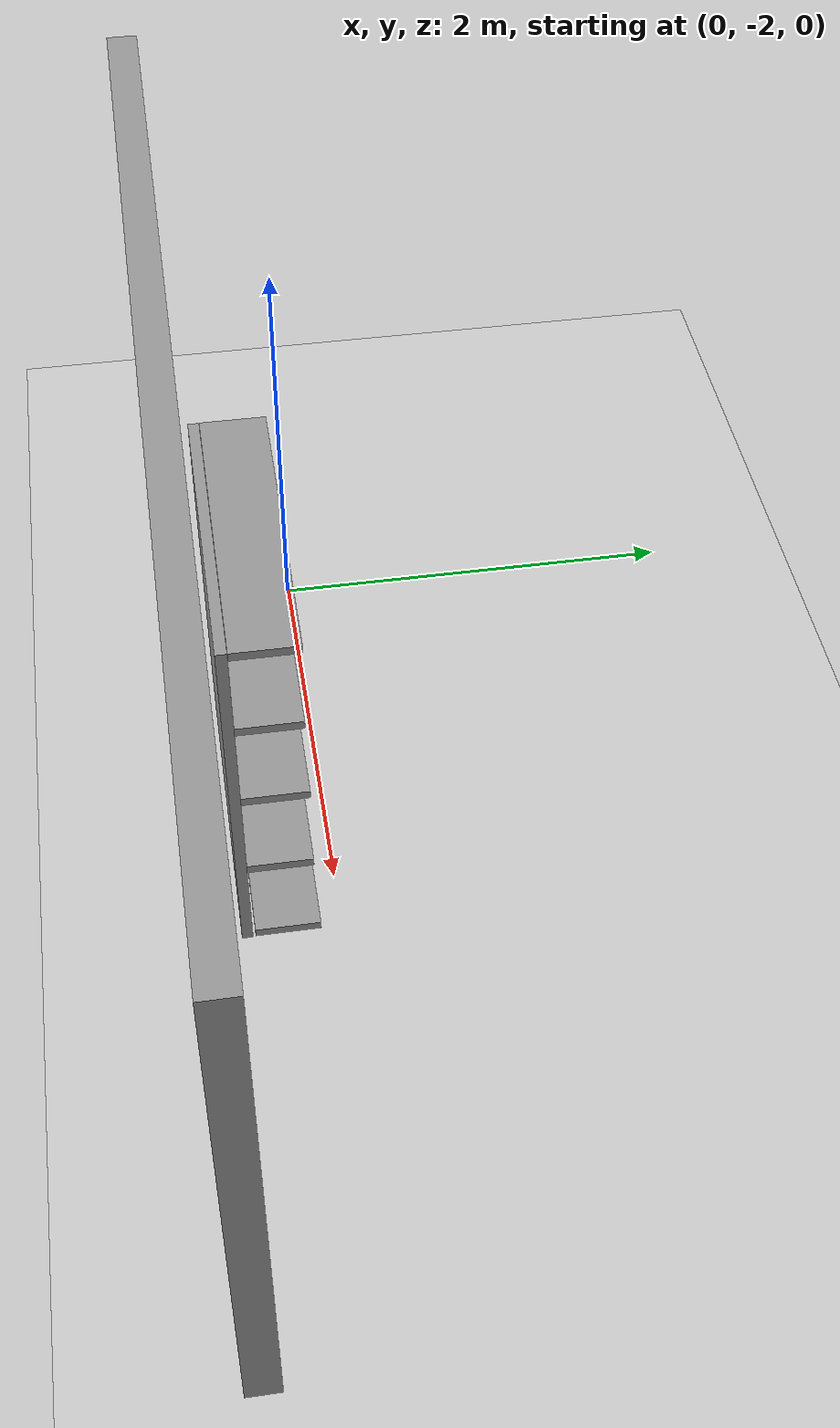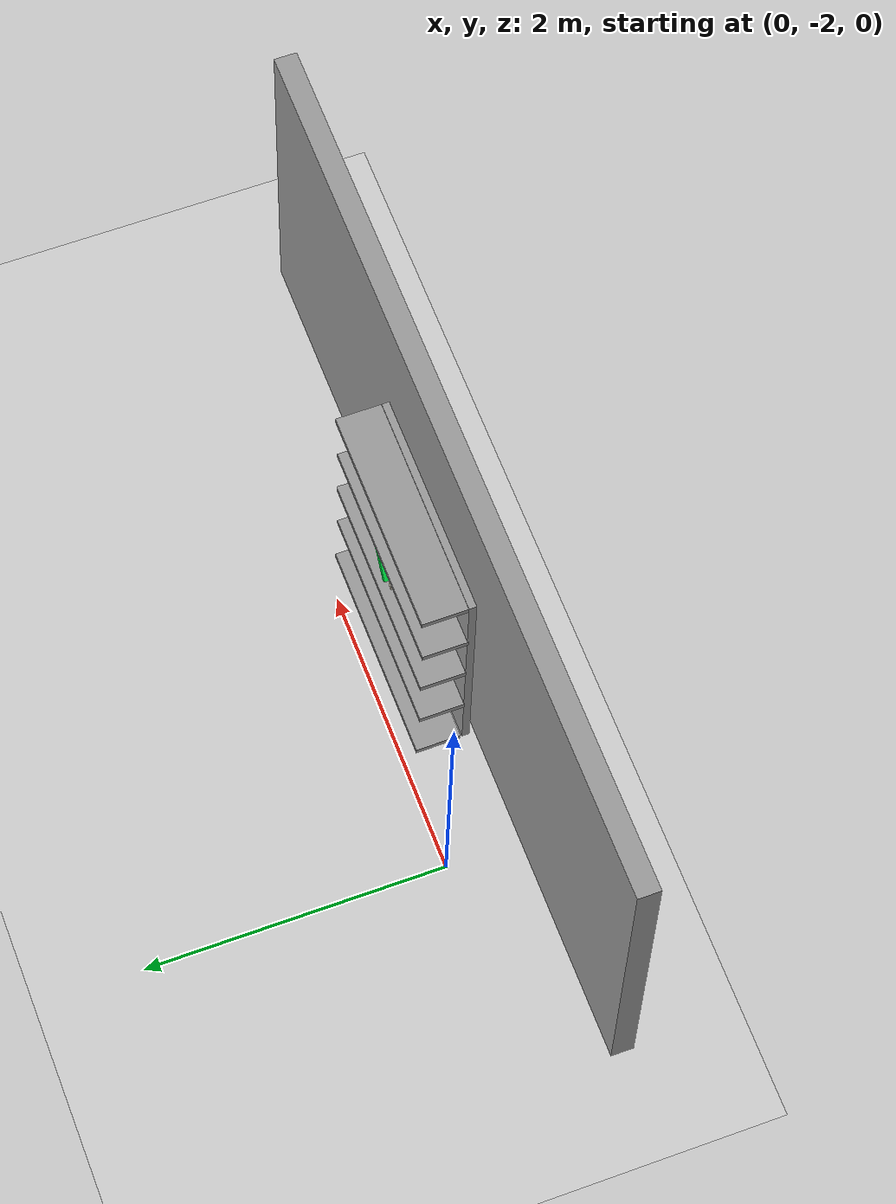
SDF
<sdf version="1.7">
 <world name="default">
  <model name="ground_plane">
   <static>1</static>
   <link name="link">
    <collision name="collision">
     <geometry><plane><normal>0 0 1</normal><size>100 100</size></plane></geometry>
     <surface>
      <contact><collide_bitmask>65535</collide_bitmask></contact>
      <friction><ode><mu>100</mu><mu2>50</mu2></ode></friction>
     </surface>
    </collision>
    <visual name="visual">
     <cast_shadows>0</cast_shadows>
     <geometry><plane><normal>0 0 1</normal><size>100 100</size></plane></geometry>
     <material>
      <script><uri>file://media/materials/scripts/gazebo.material</uri><name>Gazebo/Grey</name></script>
     </material>
    </visual>
   </link>
  </model>
  <model name="my_building_p4">
   <link name="Wall_36">
    <pose>1.49997 -5.53503 0 0 -0 0</pose>
    <inertial>
     <mass>1</mass>
     <inertia><ixx>1</ixx><ixy>0</ixy><ixz>0</ixz><iyy>1</iyy><iyz>0</iyz><izz>1</izz></inertia>
    </inertial>
    <visual name="Wall_36_Visual">
     <pose>0 0 1.25 0 -0 0</pose>
     <geometry><box><size>6 0.15 2.5</size></box></geometry>
     <material>
      <script><uri>file://media/materials/scripts/gazebo.material</uri><name>Gazebo/Grey</name></script>
      <ambient>1 1 1 1</ambient>
      <shader type="pixel"><normal_map>__default__</normal_map></shader>
      <diffuse>0.7 0.7 0.7 1</diffuse>
      <specular>0.01 0.01 0.01 1</specular>
      <emissive>0 0 0 1</emissive>
     </material>
     <meta><layer>0</layer></meta>
    </visual>
    <collision name="Wall_36_Collision">
     <pose>0 0 1.25 0 -0 0</pose>
     <geometry><box><size>6 0.15 2.5</size></box></geometry>
     <surface>
      <friction>
       <ode><mu>1</mu><mu2>1</mu2><fdir1>0 0 0</fdir1><slip1>0</slip1><slip2>0</slip2></ode>
       <torsional>
        <coefficient>1</coefficient>
        <patch_radius>0</patch_radius>
        <surface_radius>0</surface_radius>
        <use_patch_radius>1</use_patch_radius>
        <ode><slip>0</slip></ode>
       </torsional>
      </friction>
      <bounce><restitution_coefficient>0</restitution_coefficient><threshold>1e+06</threshold></bounce>
      <contact>
       <collide_without_contact>0</collide_without_contact>
       <collide_without_contact_bitmask>1</collide_without_contact_bitmask>
       <collide_bitmask>1</collide_bitmask>
       <ode>
        <soft_cfm>0</soft_cfm>
        <soft_erp>0.2</soft_erp>
        <kp>1e+13</kp>
        <kd>1</kd>
        <max_vel>0.01</max_vel>
        <min_depth>0</min_depth>
       </ode>
       <bullet>
        <split_impulse>1</split_impulse>
        <split_impulse_penetration_threshold>-0.01</split_impulse_penetration_threshold>
        <soft_cfm>0</soft_cfm>
        <soft_erp>0.2</soft_erp>
        <kp>1e+13</kp>
        <kd>1</kd>
       </bullet>
      </contact>
     </surface>
    </collision>
   </link>
   <static>1</static>
   <pose>-0.017657 2.964 0 0 -0 0</pose>
  </model>
  <model name="my_bookshelf">
   <link name="link">
    <inertial>
     <mass>1</mass>
     <inertia>
      <ixx>0.166667</ixx>
      <ixy>0</ixy>
      <ixz>0</ixz>
      <iyy>0.166667</iyy>
      <iyz>0</iyz>
      <izz>0.166667</izz>
     </inertia>
    </inertial>
    <pose>0.010503 -0.018536 0.006993 0 -0 0</pose>
    <visual name="visual">
     <geometry><box><size>0.05 1.5 1.8</size></box></geometry>
     <material>
      <script><name>Gazebo/Grey</name><uri>file://media/materials/scripts/gazebo.material</uri></script>
      <shader type="pixel"><normal_map>__default__</normal_map></shader>
      <ambient>0.9 0.9 0.9 1</ambient>
      <diffuse>0.9 0.9 0.9 1</diffuse>
      <specular>0.01 0.01 0.01 1</specular>
      <emissive>0 0 0 1</emissive>
     </material>
     <pose>0 0 0.9 0 -0 0</pose>
    </visual>
    <collision name="collision">
     <pose>0 0 0.9 0 -0 0</pose>
     <geometry><box><size>0.05 1.5 1.8</size></box></geometry>
     <surface>
      <friction>
       <ode><mu>1</mu><mu2>1</mu2><fdir1>0 0 0</fdir1><slip1>0</slip1><slip2>0</slip2></ode>
       <torsional>
        <coefficient>1</coefficient>
        <patch_radius>0</patch_radius>
        <surface_radius>0</surface_radius>
        <use_patch_radius>1</use_patch_radius>
        <ode><slip>0</slip></ode>
       </torsional>
      </friction>
      <bounce><restitution_coefficient>0</restitution_coefficient><threshold>1e+06</threshold></bounce>
      <contact>
       <collide_without_contact>0</collide_without_contact>
       <collide_without_contact_bitmask>1</collide_without_contact_bitmask>
       <collide_bitmask>1</collide_bitmask>
       <ode>
        <soft_cfm>0</soft_cfm>
        <soft_erp>0.2</soft_erp>
        <kp>1e+13</kp>
        <kd>1</kd>
        <max_vel>0.01</max_vel>
        <min_depth>0</min_depth>
       </ode>
       <bullet>
        <split_impulse>1</split_impulse>
        <split_impulse_penetration_threshold>-0.01</split_impulse_penetration_threshold>
        <soft_cfm>0</soft_cfm>
        <soft_erp>0.2</soft_erp>
        <kp>1e+13</kp>
        <kd>1</kd>
       </bullet>
      </contact>
     </surface>
    </collision>
   </link>
   <link name="link_0_clone_0_clone_1">
    <inertial>
     <mass>1</mass>
     <inertia>
      <ixx>0.166667</ixx>
      <ixy>0</ixy>
      <ixz>0</ixz>
      <iyy>0.166667</iyy>
      <iyz>0</iyz>
      <izz>0.166667</izz>
     </inertia>
    </inertial>
    <pose>0.167852 0.018542 1.07916 0 -0 0</pose>
    <visual name="visual">
     <geometry><box><size>0.2 0.04 0.27</size></box></geometry>
     <material>
      <lighting>1</lighting>
      <script><uri>file://media/materials/scripts/gazebo.material</uri><name>Gazebo/Grey</name></script>
      <shader type="pixel"><normal_map>__default__</normal_map></shader>
      <ambient>0.96 0.93 0.84 1</ambient>
      <diffuse>0.96 0.93 0.84 1</diffuse>
      <specular>0.01 0.01 0.01 1</specular>
      <emissive>0 0 0 1</emissive>
     </material>
    </visual>
    <collision name="collision">
     <geometry><box><size>0.2 0.04 0.27</size></box></geometry>
     <surface>
      <friction>
       <ode><mu>1</mu><mu2>1</mu2><fdir1>0 0 0</fdir1><slip1>0</slip1><slip2>0</slip2></ode>
       <torsional>
        <coefficient>1</coefficient>
        <patch_radius>0</patch_radius>
        <surface_radius>0</surface_radius>
        <use_patch_radius>1</use_patch_radius>
        <ode><slip>0</slip></ode>
       </torsional>
      </friction>
      <bounce><restitution_coefficient>0</restitution_coefficient><threshold>1e+06</threshold></bounce>
      <contact>
       <collide_without_contact>0</collide_without_contact>
       <collide_without_contact_bitmask>1</collide_without_contact_bitmask>
       <collide_bitmask>1</collide_bitmask>
       <ode>
        <soft_cfm>0</soft_cfm>
        <soft_erp>0.2</soft_erp>
        <kp>1e+13</kp>
        <kd>1</kd>
        <max_vel>0.01</max_vel>
        <min_depth>0</min_depth>
       </ode>
       <bullet>
        <split_impulse>1</split_impulse>
        <split_impulse_penetration_threshold>-0.01</split_impulse_penetration_threshold>
        <soft_cfm>0</soft_cfm>
        <soft_erp>0.2</soft_erp>
        <kp>1e+13</kp>
        <kd>1</kd>
       </bullet>
      </contact>
     </surface>
    </collision>
   </link>
   <link name="link_0_clone_clone_clone">
    <inertial>
     <mass>1</mass>
     <inertia>
      <ixx>0.166667</ixx>
      <ixy>0</ixy>
      <ixz>0</ixz>
      <iyy>0.166667</iyy>
      <iyz>0</iyz>
      <izz>0.166667</izz>
     </inertia>
    </inertial>
    <pose>0.191113 -0.103562 1.06169 0 -0 0</pose>
    <visual name="visual">
     <pose>0 0 0 0.6 -0 0</pose>
     <geometry><box><size>0.2 0.04 0.26</size></box></geometry>
     <material>
      <lighting>1</lighting>
      <script><uri>file://media/materials/scripts/gazebo.material</uri><name>Gazebo/Grey</name></script>
      <shader type="pixel"><normal_map>__default__</normal_map></shader>
      <ambient>0 1 0.3 1</ambient>
      <diffuse>0.8 0.8 0.8 1</diffuse>
      <specular>0.01 0.01 0.01 1</specular>
      <emissive>0 0 0 1</emissive>
     </material>
    </visual>
    <collision name="collision">
     <pose>0 0 0 0.6 -0 0</pose>
     <geometry><box><size>0.2 0.04 0.26</size></box></geometry>
     <surface>
      <friction>
       <ode><mu>1</mu><mu2>1</mu2><fdir1>0 0 0</fdir1><slip1>0</slip1><slip2>0</slip2></ode>
       <torsional>
        <coefficient>1</coefficient>
        <patch_radius>0</patch_radius>
        <surface_radius>0</surface_radius>
        <use_patch_radius>1</use_patch_radius>
        <ode><slip>0</slip></ode>
       </torsional>
      </friction>
      <bounce><restitution_coefficient>0</restitution_coefficient><threshold>1e+06</threshold></bounce>
      <contact>
       <collide_without_contact>0</collide_without_contact>
       <collide_without_contact_bitmask>1</collide_without_contact_bitmask>
       <collide_bitmask>1</collide_bitmask>
       <ode>
        <soft_cfm>0</soft_cfm>
        <soft_erp>0.2</soft_erp>
        <kp>1e+13</kp>
        <kd>1</kd>
        <max_vel>0.01</max_vel>
        <min_depth>0</min_depth>
       </ode>
       <bullet>
        <split_impulse>1</split_impulse>
        <split_impulse_penetration_threshold>-0.01</split_impulse_penetration_threshold>
        <soft_cfm>0</soft_cfm>
        <soft_erp>0.2</soft_erp>
        <kp>1e+13</kp>
        <kd>1</kd>
       </bullet>
      </contact>
     </surface>
    </collision>
   </link>
   <link name="link_clone">
    <inertial>
     <mass>1</mass>
     <inertia>
      <ixx>0.166667</ixx>
      <ixy>0</ixy>
      <ixz>0</ixz>
      <iyy>0.166667</iyy>
      <iyz>0</iyz>
      <izz>0.166667</izz>
     </inertia>
    </inertial>
    <pose>0.199559 -0.011174 -1.077 1.1e-05 -0.001065 2e-06</pose>
    <visual name="visual">
     <geometry><box><size>0.3 1.5 0.04</size></box></geometry>
     <material>
      <script><name>Gazebo/Grey</name><uri>file://media/materials/scripts/gazebo.material</uri></script>
      <shader type="pixel"><normal_map>__default__</normal_map></shader>
      <ambient>0.9 0.9 0.9 1</ambient>
      <diffuse>0.9 0.9 0.9 1</diffuse>
      <specular>0.01 0.01 0.01 1</specular>
      <emissive>0 0 0 1</emissive>
     </material>
     <pose>0 0 1.1 0 -0 0</pose>
    </visual>
    <collision name="collision">
     <pose>0 0 1.1 0 -0 0</pose>
     <geometry><box><size>0.3 1.5 0.04</size></box></geometry>
     <surface>
      <friction>
       <ode><mu>1</mu><mu2>1</mu2><fdir1>0 0 0</fdir1><slip1>0</slip1><slip2>0</slip2></ode>
       <torsional>
        <coefficient>1</coefficient>
        <patch_radius>0</patch_radius>
        <surface_radius>0</surface_radius>
        <use_patch_radius>1</use_patch_radius>
        <ode><slip>0</slip></ode>
       </torsional>
      </friction>
      <bounce><restitution_coefficient>0</restitution_coefficient><threshold>1e+06</threshold></bounce>
      <contact>
       <collide_without_contact>0</collide_without_contact>
       <collide_without_contact_bitmask>1</collide_without_contact_bitmask>
       <collide_bitmask>1</collide_bitmask>
       <ode>
        <soft_cfm>0</soft_cfm>
        <soft_erp>0.2</soft_erp>
        <kp>1e+13</kp>
        <kd>1</kd>
        <max_vel>0.01</max_vel>
        <min_depth>0</min_depth>
       </ode>
       <bullet>
        <split_impulse>1</split_impulse>
        <split_impulse_penetration_threshold>-0.01</split_impulse_penetration_threshold>
        <soft_cfm>0</soft_cfm>
        <soft_erp>0.2</soft_erp>
        <kp>1e+13</kp>
        <kd>1</kd>
       </bullet>
      </contact>
     </surface>
    </collision>
   </link>
   <link name="link_clone_clone">
    <inertial>
     <mass>1</mass>
     <inertia>
      <ixx>0.166667</ixx>
      <ixy>0</ixy>
      <ixz>0</ixz>
      <iyy>0.166667</iyy>
      <iyz>0</iyz>
      <izz>0.166667</izz>
     </inertia>
    </inertial>
    <pose>0.17729 -0.012222 0.249312 2.2e-05 0.000604 0.000114</pose>
    <visual name="visual">
     <geometry><box><size>0.3 1.5 0.04</size></box></geometry>
     <material>
      <script><name>Gazebo/Grey</name><uri>file://media/materials/scripts/gazebo.material</uri></script>
      <shader type="pixel"><normal_map>__default__</normal_map></shader>
      <ambient>0.9 0.9 0.9 1</ambient>
      <diffuse>0.9 0.9 0.9 1</diffuse>
      <specular>0.01 0.01 0.01 1</specular>
      <emissive>0 0 0 1</emissive>
     </material>
     <pose>0 0 1.1 0 -0 0</pose>
    </visual>
    <collision name="collision">
     <pose>0 0 1.1 0 -0 0</pose>
     <geometry><box><size>0.3 1.5 0.04</size></box></geometry>
     <surface>
      <friction>
       <ode><mu>1</mu><mu2>1</mu2><fdir1>0 0 0</fdir1><slip1>0</slip1><slip2>0</slip2></ode>
       <torsional>
        <coefficient>1</coefficient>
        <patch_radius>0</patch_radius>
        <surface_radius>0</surface_radius>
        <use_patch_radius>1</use_patch_radius>
        <ode><slip>0</slip></ode>
       </torsional>
      </friction>
      <bounce><restitution_coefficient>0</restitution_coefficient><threshold>1e+06</threshold></bounce>
      <contact>
       <collide_without_contact>0</collide_without_contact>
       <collide_without_contact_bitmask>1</collide_without_contact_bitmask>
       <collide_bitmask>1</collide_bitmask>
       <ode>
        <soft_cfm>0</soft_cfm>
        <soft_erp>0.2</soft_erp>
        <kp>1e+13</kp>
        <kd>1</kd>
        <max_vel>0.01</max_vel>
        <min_depth>0</min_depth>
       </ode>
       <bullet>
        <split_impulse>1</split_impulse>
        <split_impulse_penetration_threshold>-0.01</split_impulse_penetration_threshold>
        <soft_cfm>0</soft_cfm>
        <soft_erp>0.2</soft_erp>
        <kp>1e+13</kp>
        <kd>1</kd>
       </bullet>
      </contact>
     </surface>
    </collision>
   </link>
   <link name="link_clone_clone_0">
    <inertial>
     <mass>1</mass>
     <inertia>
      <ixx>0.166667</ixx>
      <ixy>0</ixy>
      <ixz>0</ixz>
      <iyy>0.166667</iyy>
      <iyz>0</iyz>
      <izz>0.166667</izz>
     </inertia>
    </inertial>
    <pose>0.186363 -0.017339 0.93719 2.2e-05 0.000604 0.000114</pose>
    <gravity>0</gravity>
    <visual name="visual">
     <geometry><box><size>0.3 1.5 0.04</size></box></geometry>
     <material>
      <script><name>Gazebo/Grey</name><uri>file://media/materials/scripts/gazebo.material</uri></script>
      <shader type="pixel"><normal_map>__default__</normal_map></shader>
      <ambient>0.9 0.9 0.9 1</ambient>
      <diffuse>0.9 0.9 0.9 1</diffuse>
      <specular>0.01 0.01 0.01 1</specular>
      <emissive>0 0 0 1</emissive>
     </material>
     <pose>0 0 0.85 0 -0 0</pose>
    </visual>
    <collision name="collision">
     <pose>0 0 0.85 0 -0 0</pose>
     <geometry><box><size>0.3 1.5 0.04</size></box></geometry>
     <surface>
      <friction>
       <ode><mu>1</mu><mu2>1</mu2><fdir1>0 0 0</fdir1><slip1>0</slip1><slip2>0</slip2></ode>
       <torsional>
        <coefficient>1</coefficient>
        <patch_radius>0</patch_radius>
        <surface_radius>0</surface_radius>
        <use_patch_radius>1</use_patch_radius>
        <ode><slip>0</slip></ode>
       </torsional>
      </friction>
      <bounce><restitution_coefficient>0</restitution_coefficient><threshold>1e+06</threshold></bounce>
      <contact>
       <collide_without_contact>0</collide_without_contact>
       <collide_without_contact_bitmask>1</collide_without_contact_bitmask>
       <collide_bitmask>1</collide_bitmask>
       <ode>
        <soft_cfm>0</soft_cfm>
        <soft_erp>0.2</soft_erp>
        <kp>1e+13</kp>
        <kd>1</kd>
        <max_vel>0.01</max_vel>
        <min_depth>0</min_depth>
       </ode>
       <bullet>
        <split_impulse>1</split_impulse>
        <split_impulse_penetration_threshold>-0.01</split_impulse_penetration_threshold>
        <soft_cfm>0</soft_cfm>
        <soft_erp>0.2</soft_erp>
        <kp>1e+13</kp>
        <kd>1</kd>
       </bullet>
      </contact>
     </surface>
    </collision>
   </link>
   <link name="link_clone_clone_1">
    <inertial>
     <mass>1</mass>
     <inertia>
      <ixx>0.166667</ixx>
      <ixy>0</ixy>
      <ixz>0</ixz>
      <iyy>0.166667</iyy>
      <iyz>0</iyz>
      <izz>0.166667</izz>
     </inertia>
    </inertial>
    <pose>0.18345 -0.015542 0.072067 2.2e-05 0.000604 0.000114</pose>
    <visual name="visual">
     <geometry><box><size>0.3 1.5 0.04</size></box></geometry>
     <material>
      <script><name>Gazebo/Grey</name><uri>file://media/materials/scripts/gazebo.material</uri></script>
      <shader type="pixel"><normal_map>__default__</normal_map></shader>
      <ambient>0.9 0.9 0.9 1</ambient>
      <diffuse>0.9 0.9 0.9 1</diffuse>
      <specular>0.01 0.01 0.01 1</specular>
      <emissive>0 0 0 1</emissive>
     </material>
     <pose>0 0 0.85 0 -0 0</pose>
    </visual>
    <collision name="collision">
     <pose>0 0 0.85 0 -0 0</pose>
     <geometry><box><size>0.3 1.5 0.04</size></box></geometry>
     <surface>
      <friction>
       <ode><mu>1</mu><mu2>1</mu2><fdir1>0 0 0</fdir1><slip1>0</slip1><slip2>0</slip2></ode>
       <torsional>
        <coefficient>1</coefficient>
        <patch_radius>0</patch_radius>
        <surface_radius>0</surface_radius>
        <use_patch_radius>1</use_patch_radius>
        <ode><slip>0</slip></ode>
       </torsional>
      </friction>
      <bounce><restitution_coefficient>0</restitution_coefficient><threshold>1e+06</threshold></bounce>
      <contact>
       <collide_without_contact>0</collide_without_contact>
       <collide_without_contact_bitmask>1</collide_without_contact_bitmask>
       <collide_bitmask>1</collide_bitmask>
       <ode>
        <soft_cfm>0</soft_cfm>
        <soft_erp>0.2</soft_erp>
        <kp>1e+13</kp>
        <kd>1</kd>
        <max_vel>0.01</max_vel>
        <min_depth>0</min_depth>
       </ode>
       <bullet>
        <split_impulse>1</split_impulse>
        <split_impulse_penetration_threshold>-0.01</split_impulse_penetration_threshold>
        <soft_cfm>0</soft_cfm>
        <soft_erp>0.2</soft_erp>
        <kp>1e+13</kp>
        <kd>1</kd>
       </bullet>
      </contact>
     </surface>
    </collision>
   </link>
   <link name="link_clone_clone_1_clone">
    <inertial>
     <mass>1</mass>
     <inertia>
      <ixx>0.166667</ixx>
      <ixy>0</ixy>
      <ixz>0</ixz>
      <iyy>0.166667</iyy>
      <iyz>0</iyz>
      <izz>0.166667</izz>
     </inertia>
    </inertial>
    <pose>0.179903 -0.012618 -0.37588 3.4e-05 0.002273 0.000226</pose>
    <gravity>0</gravity>
    <visual name="visual">
     <geometry><box><size>0.3 1.5 0.04</size></box></geometry>
     <material>
      <script><name>Gazebo/Grey</name><uri>file://media/materials/scripts/gazebo.material</uri></script>
      <shader type="pixel"><normal_map>__default__</normal_map></shader>
      <ambient>0.9 0.9 0.9 1</ambient>
      <diffuse>0.9 0.9 0.9 1</diffuse>
      <specular>0.01 0.01 0.01 1</specular>
      <emissive>0 0 0 1</emissive>
     </material>
     <pose>0 0 0.85 0 -0 0</pose>
    </visual>
    <collision name="collision">
     <pose>0 0 0.85 0 -0 0</pose>
     <geometry><box><size>0.3 1.5 0.04</size></box></geometry>
     <surface>
      <friction>
       <ode><mu>1</mu><mu2>1</mu2><fdir1>0 0 0</fdir1><slip1>0</slip1><slip2>0</slip2></ode>
       <torsional>
        <coefficient>1</coefficient>
        <patch_radius>0</patch_radius>
        <surface_radius>0</surface_radius>
        <use_patch_radius>1</use_patch_radius>
        <ode><slip>0</slip></ode>
       </torsional>
      </friction>
      <bounce><restitution_coefficient>0</restitution_coefficient><threshold>1e+06</threshold></bounce>
      <contact>
       <collide_without_contact>0</collide_without_contact>
       <collide_without_contact_bitmask>1</collide_without_contact_bitmask>
       <collide_bitmask>1</collide_bitmask>
       <ode>
        <soft_cfm>0</soft_cfm>
        <soft_erp>0.2</soft_erp>
        <kp>1e+13</kp>
        <kd>1</kd>
        <max_vel>0.01</max_vel>
        <min_depth>0</min_depth>
       </ode>
       <bullet>
        <split_impulse>1</split_impulse>
        <split_impulse_penetration_threshold>-0.01</split_impulse_penetration_threshold>
        <soft_cfm>0</soft_cfm>
        <soft_erp>0.2</soft_erp>
        <kp>1e+13</kp>
        <kd>1</kd>
       </bullet>
      </contact>
     </surface>
    </collision>
   </link>
   <static>1</static>
   <pose>1.53755 -2.44298 -0 0 -0 1.5708</pose>
  </model>
 </world>
</sdf>
